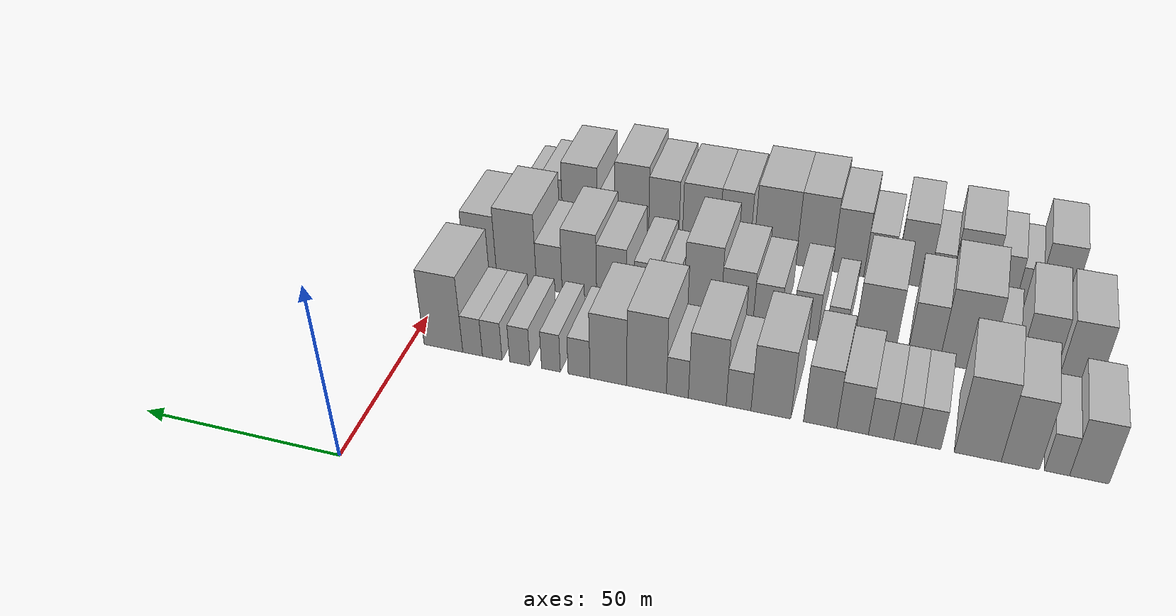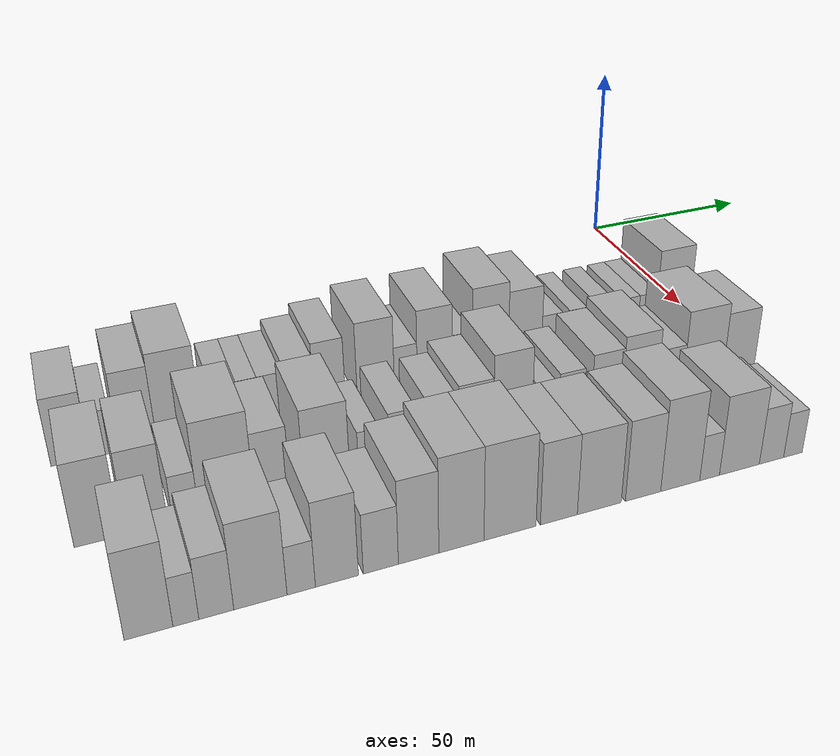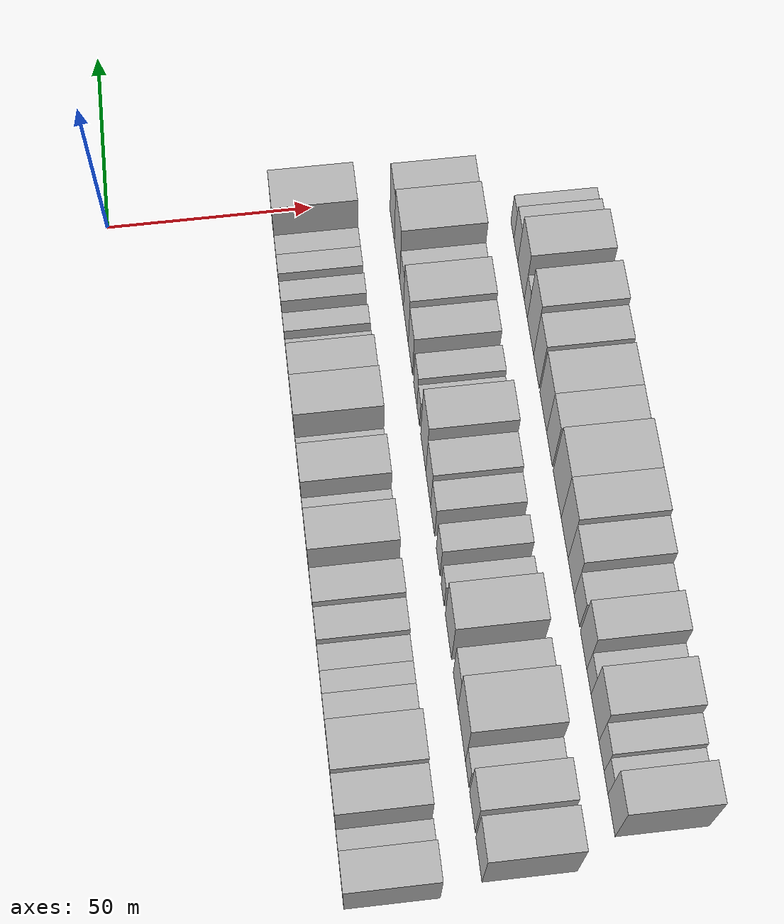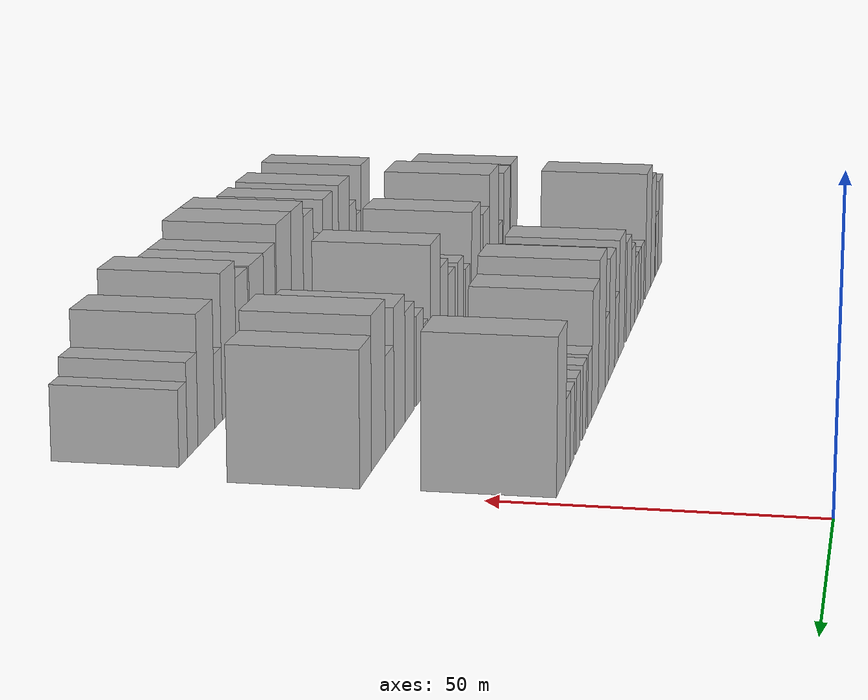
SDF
<sdf version="1.6">
 <world name="default">
  <model name="building_19">
   <static>1</static>
   <pose>50.0000 -163.7969 0 0.000000 0.000000 0.000000</pose>
   <link name="link">
    <pose>0 0 9.00 0 0 0</pose>
    <collision name="collision"><geometry><box><size>20.0000 8.4260 18.0000</size></box></geometry></collision>
    <visual name="visual">
     <cast_shadows>0</cast_shadows>
     <geometry><box><size>20.0000 8.4260 18.0000</size></box></geometry>
     <material>
      <script>
       <uri>model://HANNAS_wall/materials/scripts</uri>
       <uri>model://HANNAS_wall/materials/textures</uri>
       <name>vrc/HANNAS_wall</name>
      </script>
     </material>
    </visual>
   </link>
  </model>
  <model name="building_20">
   <static>1</static>
   <pose>50.0000 -156.8448 0 0.000000 0.000000 0.000000</pose>
   <link name="link">
    <pose>0 0 6.00 0 0 0</pose>
    <collision name="collision"><geometry><box><size>20.0000 5.4781 12.0000</size></box></geometry></collision>
    <visual name="visual">
     <cast_shadows>0</cast_shadows>
     <geometry><box><size>20.0000 5.4781 12.0000</size></box></geometry>
     <material>
      <script>
       <uri>model://HANNAS_wall/materials/scripts</uri>
       <uri>model://HANNAS_wall/materials/textures</uri>
       <name>vrc/HANNAS_wall</name>
      </script>
     </material>
    </visual>
   </link>
  </model>
  <model name="building_21">
   <static>1</static>
   <pose>50.0000 -148.9028 0 0.000000 0.000000 0.000000</pose>
   <link name="link">
    <pose>0 0 10.50 0 0 0</pose>
    <collision name="collision"><geometry><box><size>20.0000 8.4060 21.0000</size></box></geometry></collision>
    <visual name="visual">
     <cast_shadows>0</cast_shadows>
     <geometry><box><size>20.0000 8.4060 21.0000</size></box></geometry>
     <material>
      <script>
       <uri>model://HANNAS_wall/materials/scripts</uri>
       <uri>model://HANNAS_wall/materials/textures</uri>
       <name>vrc/HANNAS_wall</name>
      </script>
     </material>
    </visual>
   </link>
  </model>
  <model name="building_22">
   <static>1</static>
   <pose>50.0000 -139.4966 0 0.000000 0.000000 0.000000</pose>
   <link name="link">
    <pose>0 0 12.00 0 0 0</pose>
    <collision name="collision"><geometry><box><size>20.0000 10.4064 24.0000</size></box></geometry></collision>
    <visual name="visual">
     <cast_shadows>0</cast_shadows>
     <geometry><box><size>20.0000 10.4064 24.0000</size></box></geometry>
     <material>
      <script>
       <uri>model://HANNAS_wall/materials/scripts</uri>
       <uri>model://HANNAS_wall/materials/textures</uri>
       <name>vrc/HANNAS_wall</name>
      </script>
     </material>
    </visual>
   </link>
  </model>
  <model name="building_23">
   <static>1</static>
   <pose>50.0000 -128.4307 0 0.000000 0.000000 0.000000</pose>
   <link name="link">
    <pose>0 0 6.00 0 0 0</pose>
    <collision name="collision"><geometry><box><size>20.0000 5.7254 12.0000</size></box></geometry></collision>
    <visual name="visual">
     <cast_shadows>0</cast_shadows>
     <geometry><box><size>20.0000 5.7254 12.0000</size></box></geometry>
     <material>
      <script>
       <uri>model://HANNAS_wall/materials/scripts</uri>
       <uri>model://HANNAS_wall/materials/textures</uri>
       <name>vrc/HANNAS_wall</name>
      </script>
     </material>
    </visual>
   </link>
  </model>
  <model name="building_24">
   <static>1</static>
   <pose>50.0000 -123.0861 0 0.000000 0.000000 0.000000</pose>
   <link name="link">
    <pose>0 0 6.00 0 0 0</pose>
    <collision name="collision"><geometry><box><size>20.0000 4.9639 12.0000</size></box></geometry></collision>
    <visual name="visual">
     <cast_shadows>0</cast_shadows>
     <geometry><box><size>20.0000 4.9639 12.0000</size></box></geometry>
     <material>
      <script>
       <uri>model://HANNAS_wall/materials/scripts</uri>
       <uri>model://HANNAS_wall/materials/textures</uri>
       <name>vrc/HANNAS_wall</name>
      </script>
     </material>
    </visual>
   </link>
  </model>
  <model name="building_25">
   <static>1</static>
   <pose>50.0000 -117.6869 0 0.000000 0.000000 0.000000</pose>
   <link name="link">
    <pose>0 0 6.00 0 0 0</pose>
    <collision name="collision"><geometry><box><size>20.0000 5.8345 12.0000</size></box></geometry></collision>
    <visual name="visual">
     <cast_shadows>0</cast_shadows>
     <geometry><box><size>20.0000 5.8345 12.0000</size></box></geometry>
     <material>
      <script>
       <uri>model://HANNAS_wall/materials/scripts</uri>
       <uri>model://HANNAS_wall/materials/textures</uri>
       <name>vrc/HANNAS_wall</name>
      </script>
     </material>
    </visual>
   </link>
  </model>
  <model name="building_26">
   <static>1</static>
   <pose>50.0000 -111.0916 0 0.000000 0.000000 0.000000</pose>
   <link name="link">
    <pose>0 0 7.50 0 0 0</pose>
    <collision name="collision"><geometry><box><size>20.0000 7.3561 15.0000</size></box></geometry></collision>
    <visual name="visual">
     <cast_shadows>0</cast_shadows>
     <geometry><box><size>20.0000 7.3561 15.0000</size></box></geometry>
     <material>
      <script>
       <uri>model://HANNAS_wall/materials/scripts</uri>
       <uri>model://HANNAS_wall/materials/textures</uri>
       <name>vrc/HANNAS_wall</name>
      </script>
     </material>
    </visual>
   </link>
  </model>
  <model name="building_27">
   <static>1</static>
   <pose>50.0000 -103.5186 0 0.000000 0.000000 0.000000</pose>
   <link name="link">
    <pose>0 0 9.00 0 0 0</pose>
    <collision name="collision"><geometry><box><size>20.0000 7.7900 18.0000</size></box></geometry></collision>
    <visual name="visual">
     <cast_shadows>0</cast_shadows>
     <geometry><box><size>20.0000 7.7900 18.0000</size></box></geometry>
     <material>
      <script>
       <uri>model://HANNAS_wall/materials/scripts</uri>
       <uri>model://HANNAS_wall/materials/textures</uri>
       <name>vrc/HANNAS_wall</name>
      </script>
     </material>
    </visual>
   </link>
  </model>
  <model name="building_28">
   <static>1</static>
   <pose>50.0000 -91.8596 0 0.000000 0.000000 0.000000</pose>
   <link name="link">
    <pose>0 0 10.50 0 0 0</pose>
    <collision name="collision"><geometry><box><size>20.0000 9.5280 21.0000</size></box></geometry></collision>
    <visual name="visual">
     <cast_shadows>0</cast_shadows>
     <geometry><box><size>20.0000 9.5280 21.0000</size></box></geometry>
     <material>
      <script>
       <uri>model://HANNAS_wall/materials/scripts</uri>
       <uri>model://HANNAS_wall/materials/textures</uri>
       <name>vrc/HANNAS_wall</name>
      </script>
     </material>
    </visual>
   </link>
  </model>
  <model name="building_29">
   <static>1</static>
   <pose>50.0000 -84.0969 0 0.000000 0.000000 0.000000</pose>
   <link name="link">
    <pose>0 0 6.00 0 0 0</pose>
    <collision name="collision"><geometry><box><size>20.0000 5.9974 12.0000</size></box></geometry></collision>
    <visual name="visual">
     <cast_shadows>0</cast_shadows>
     <geometry><box><size>20.0000 5.9974 12.0000</size></box></geometry>
     <material>
      <script>
       <uri>model://HANNAS_wall/materials/scripts</uri>
       <uri>model://HANNAS_wall/materials/textures</uri>
       <name>vrc/HANNAS_wall</name>
      </script>
     </material>
    </visual>
   </link>
  </model>
  <model name="building_30">
   <static>1</static>
   <pose>50.0000 -76.4811 0 0.000000 0.000000 0.000000</pose>
   <link name="link">
    <pose>0 0 10.50 0 0 0</pose>
    <collision name="collision"><geometry><box><size>20.0000 9.2342 21.0000</size></box></geometry></collision>
    <visual name="visual">
     <cast_shadows>0</cast_shadows>
     <geometry><box><size>20.0000 9.2342 21.0000</size></box></geometry>
     <material>
      <script>
       <uri>model://HANNAS_wall/materials/scripts</uri>
       <uri>model://HANNAS_wall/materials/textures</uri>
       <name>vrc/HANNAS_wall</name>
      </script>
     </material>
    </visual>
   </link>
  </model>
  <model name="building_31">
   <static>1</static>
   <pose>50.0000 -69.1542 0 0.000000 0.000000 0.000000</pose>
   <link name="link">
    <pose>0 0 6.00 0 0 0</pose>
    <collision name="collision"><geometry><box><size>20.0000 5.4197 12.0000</size></box></geometry></collision>
    <visual name="visual">
     <cast_shadows>0</cast_shadows>
     <geometry><box><size>20.0000 5.4197 12.0000</size></box></geometry>
     <material>
      <script>
       <uri>model://HANNAS_wall/materials/scripts</uri>
       <uri>model://HANNAS_wall/materials/textures</uri>
       <name>vrc/HANNAS_wall</name>
      </script>
     </material>
    </visual>
   </link>
  </model>
  <model name="building_32">
   <static>1</static>
   <pose>50.0000 -61.4947 0 0.000000 0.000000 0.000000</pose>
   <link name="link">
    <pose>0 0 12.00 0 0 0</pose>
    <collision name="collision"><geometry><box><size>20.0000 9.8994 24.0000</size></box></geometry></collision>
    <visual name="visual">
     <cast_shadows>0</cast_shadows>
     <geometry><box><size>20.0000 9.8994 24.0000</size></box></geometry>
     <material>
      <script>
       <uri>model://HANNAS_wall/materials/scripts</uri>
       <uri>model://HANNAS_wall/materials/textures</uri>
       <name>vrc/HANNAS_wall</name>
      </script>
     </material>
    </visual>
   </link>
  </model>
  <model name="building_33">
   <static>1</static>
   <pose>50.0000 -51.8839 0 0.000000 0.000000 0.000000</pose>
   <link name="link">
    <pose>0 0 10.50 0 0 0</pose>
    <collision name="collision"><geometry><box><size>20.0000 9.3221 21.0000</size></box></geometry></collision>
    <visual name="visual">
     <cast_shadows>0</cast_shadows>
     <geometry><box><size>20.0000 9.3221 21.0000</size></box></geometry>
     <material>
      <script>
       <uri>model://HANNAS_wall/materials/scripts</uri>
       <uri>model://HANNAS_wall/materials/textures</uri>
       <name>vrc/HANNAS_wall</name>
      </script>
     </material>
    </visual>
   </link>
  </model>
  <model name="building_34">
   <static>1</static>
   <pose>50.0000 -44.4102 0 0.000000 0.000000 0.000000</pose>
   <link name="link">
    <pose>0 0 6.00 0 0 0</pose>
    <collision name="collision"><geometry><box><size>20.0000 5.6254 12.0000</size></box></geometry></collision>
    <visual name="visual">
     <cast_shadows>0</cast_shadows>
     <geometry><box><size>20.0000 5.6254 12.0000</size></box></geometry>
     <material>
      <script>
       <uri>model://HANNAS_wall/materials/scripts</uri>
       <uri>model://HANNAS_wall/materials/textures</uri>
       <name>vrc/HANNAS_wall</name>
      </script>
     </material>
    </visual>
   </link>
  </model>
  <model name="building_35">
   <static>1</static>
   <pose>50.0000 -37.1512 0 0.000000 0.000000 0.000000</pose>
   <link name="link">
    <pose>0 0 6.00 0 0 0</pose>
    <collision name="collision"><geometry><box><size>20.0000 4.8925 12.0000</size></box></geometry></collision>
    <visual name="visual">
     <cast_shadows>0</cast_shadows>
     <geometry><box><size>20.0000 4.8925 12.0000</size></box></geometry>
     <material>
      <script>
       <uri>model://HANNAS_wall/materials/scripts</uri>
       <uri>model://HANNAS_wall/materials/textures</uri>
       <name>vrc/HANNAS_wall</name>
      </script>
     </material>
    </visual>
   </link>
  </model>
  <model name="building_36">
   <static>1</static>
   <pose>50.0000 -29.0344 0 0.000000 0.000000 0.000000</pose>
   <link name="link">
    <pose>0 0 6.00 0 0 0</pose>
    <collision name="collision"><geometry><box><size>20.0000 5.3409 12.0000</size></box></geometry></collision>
    <visual name="visual">
     <cast_shadows>0</cast_shadows>
     <geometry><box><size>20.0000 5.3409 12.0000</size></box></geometry>
     <material>
      <script>
       <uri>model://HANNAS_wall/materials/scripts</uri>
       <uri>model://HANNAS_wall/materials/textures</uri>
       <name>vrc/HANNAS_wall</name>
      </script>
     </material>
    </visual>
   </link>
  </model>
  <model name="building_37">
   <static>1</static>
   <pose>50.0000 -21.7599 0 0.000000 0.000000 0.000000</pose>
   <link name="link">
    <pose>0 0 6.00 0 0 0</pose>
    <collision name="collision"><geometry><box><size>20.0000 5.2081 12.0000</size></box></geometry></collision>
    <visual name="visual">
     <cast_shadows>0</cast_shadows>
     <geometry><box><size>20.0000 5.2081 12.0000</size></box></geometry>
     <material>
      <script>
       <uri>model://HANNAS_wall/materials/scripts</uri>
       <uri>model://HANNAS_wall/materials/textures</uri>
       <name>vrc/HANNAS_wall</name>
      </script>
     </material>
    </visual>
   </link>
  </model>
  <model name="building_38">
   <static>1</static>
   <pose>50.0000 -16.5319 0 0.000000 0.000000 0.000000</pose>
   <link name="link">
    <pose>0 0 6.00 0 0 0</pose>
    <collision name="collision"><geometry><box><size>20.0000 5.2479 12.0000</size></box></geometry></collision>
    <visual name="visual">
     <cast_shadows>0</cast_shadows>
     <geometry><box><size>20.0000 5.2479 12.0000</size></box></geometry>
     <material>
      <script>
       <uri>model://HANNAS_wall/materials/scripts</uri>
       <uri>model://HANNAS_wall/materials/textures</uri>
       <name>vrc/HANNAS_wall</name>
      </script>
     </material>
    </visual>
   </link>
  </model>
  <model name="building_39">
   <static>1</static>
   <pose>50.0000 -8.6887 0 0.000000 0.000000 0.000000</pose>
   <link name="link">
    <pose>0 0 12.00 0 0 0</pose>
    <collision name="collision"><geometry><box><size>20.0000 10.4386 24.0000</size></box></geometry></collision>
    <visual name="visual">
     <cast_shadows>0</cast_shadows>
     <geometry><box><size>20.0000 10.4386 24.0000</size></box></geometry>
     <material>
      <script>
       <uri>model://HANNAS_wall/materials/scripts</uri>
       <uri>model://HANNAS_wall/materials/textures</uri>
       <name>vrc/HANNAS_wall</name>
      </script>
     </material>
    </visual>
   </link>
  </model>
  <model name="building_96">
   <static>1</static>
   <pose>79.0000 -161.1524 0 0.000000 0.000000 0.000000</pose>
   <link name="link">
    <pose>0 0 10.50 0 0 0</pose>
    <collision name="collision"><geometry><box><size>20.0000 9.2816 21.0000</size></box></geometry></collision>
    <visual name="visual">
     <cast_shadows>0</cast_shadows>
     <geometry><box><size>20.0000 9.2816 21.0000</size></box></geometry>
     <material>
      <script>
       <uri>model://HANNAS_wall/materials/scripts</uri>
       <uri>model://HANNAS_wall/materials/textures</uri>
       <name>vrc/HANNAS_wall</name>
      </script>
     </material>
    </visual>
   </link>
  </model>
  <model name="building_97">
   <static>1</static>
   <pose>79.0000 -151.2131 0 0.000000 0.000000 0.000000</pose>
   <link name="link">
    <pose>0 0 10.50 0 0 0</pose>
    <collision name="collision"><geometry><box><size>20.0000 8.5970 21.0000</size></box></geometry></collision>
    <visual name="visual">
     <cast_shadows>0</cast_shadows>
     <geometry><box><size>20.0000 8.5970 21.0000</size></box></geometry>
     <material>
      <script>
       <uri>model://HANNAS_wall/materials/scripts</uri>
       <uri>model://HANNAS_wall/materials/textures</uri>
       <name>vrc/HANNAS_wall</name>
      </script>
     </material>
    </visual>
   </link>
  </model>
  <model name="building_98">
   <static>1</static>
   <pose>79.0000 -143.1586 0 0.000000 0.000000 0.000000</pose>
   <link name="link">
    <pose>0 0 6.00 0 0 0</pose>
    <collision name="collision"><geometry><box><size>20.0000 5.5120 12.0000</size></box></geometry></collision>
    <visual name="visual">
     <cast_shadows>0</cast_shadows>
     <geometry><box><size>20.0000 5.5120 12.0000</size></box></geometry>
     <material>
      <script>
       <uri>model://HANNAS_wall/materials/scripts</uri>
       <uri>model://HANNAS_wall/materials/textures</uri>
       <name>vrc/HANNAS_wall</name>
      </script>
     </material>
    </visual>
   </link>
  </model>
  <model name="building_99">
   <static>1</static>
   <pose>79.0000 -134.4645 0 0.000000 0.000000 0.000000</pose>
   <link name="link">
    <pose>0 0 12.00 0 0 0</pose>
    <collision name="collision"><geometry><box><size>20.0000 11.8762 24.0000</size></box></geometry></collision>
    <visual name="visual">
     <cast_shadows>0</cast_shadows>
     <geometry><box><size>20.0000 11.8762 24.0000</size></box></geometry>
     <material>
      <script>
       <uri>model://HANNAS_wall/materials/scripts</uri>
       <uri>model://HANNAS_wall/materials/textures</uri>
       <name>vrc/HANNAS_wall</name>
      </script>
     </material>
    </visual>
   </link>
  </model>
  <model name="building_100">
   <static>1</static>
   <pose>79.0000 -124.6125 0 0.000000 0.000000 0.000000</pose>
   <link name="link">
    <pose>0 0 9.00 0 0 0</pose>
    <collision name="collision"><geometry><box><size>20.0000 7.8279 18.0000</size></box></geometry></collision>
    <visual name="visual">
     <cast_shadows>0</cast_shadows>
     <geometry><box><size>20.0000 7.8279 18.0000</size></box></geometry>
     <material>
      <script>
       <uri>model://HANNAS_wall/materials/scripts</uri>
       <uri>model://HANNAS_wall/materials/textures</uri>
       <name>vrc/HANNAS_wall</name>
      </script>
     </material>
    </visual>
   </link>
  </model>
  <model name="building_101">
   <static>1</static>
   <pose>79.0000 -112.5172 0 0.000000 0.000000 0.000000</pose>
   <link name="link">
    <pose>0 0 10.50 0 0 0</pose>
    <collision name="collision"><geometry><box><size>20.0000 10.3627 21.0000</size></box></geometry></collision>
    <visual name="visual">
     <cast_shadows>0</cast_shadows>
     <geometry><box><size>20.0000 10.3627 21.0000</size></box></geometry>
     <material>
      <script>
       <uri>model://HANNAS_wall/materials/scripts</uri>
       <uri>model://HANNAS_wall/materials/textures</uri>
       <name>vrc/HANNAS_wall</name>
      </script>
     </material>
    </visual>
   </link>
  </model>
  <model name="building_102">
   <static>1</static>
   <pose>79.0000 -102.7918 0 0.000000 0.000000 0.000000</pose>
   <link name="link">
    <pose>0 0 6.00 0 0 0</pose>
    <collision name="collision"><geometry><box><size>20.0000 5.0881 12.0000</size></box></geometry></collision>
    <visual name="visual">
     <cast_shadows>0</cast_shadows>
     <geometry><box><size>20.0000 5.0881 12.0000</size></box></geometry>
     <material>
      <script>
       <uri>model://HANNAS_wall/materials/scripts</uri>
       <uri>model://HANNAS_wall/materials/textures</uri>
       <name>vrc/HANNAS_wall</name>
      </script>
     </material>
    </visual>
   </link>
  </model>
  <model name="building_103">
   <static>1</static>
   <pose>79.0000 -94.9808 0 0.000000 0.000000 0.000000</pose>
   <link name="link">
    <pose>0 0 7.50 0 0 0</pose>
    <collision name="collision"><geometry><box><size>20.0000 6.5339 15.0000</size></box></geometry></collision>
    <visual name="visual">
     <cast_shadows>0</cast_shadows>
     <geometry><box><size>20.0000 6.5339 15.0000</size></box></geometry>
     <material>
      <script>
       <uri>model://HANNAS_wall/materials/scripts</uri>
       <uri>model://HANNAS_wall/materials/textures</uri>
       <name>vrc/HANNAS_wall</name>
      </script>
     </material>
    </visual>
   </link>
  </model>
  <model name="building_104">
   <static>1</static>
   <pose>79.0000 -85.1651 0 0.000000 0.000000 0.000000</pose>
   <link name="link">
    <pose>0 0 7.50 0 0 0</pose>
    <collision name="collision"><geometry><box><size>20.0000 7.0974 15.0000</size></box></geometry></collision>
    <visual name="visual">
     <cast_shadows>0</cast_shadows>
     <geometry><box><size>20.0000 7.0974 15.0000</size></box></geometry>
     <material>
      <script>
       <uri>model://HANNAS_wall/materials/scripts</uri>
       <uri>model://HANNAS_wall/materials/textures</uri>
       <name>vrc/HANNAS_wall</name>
      </script>
     </material>
    </visual>
   </link>
  </model>
  <model name="building_105">
   <static>1</static>
   <pose>79.0000 -77.3808 0 0.000000 0.000000 0.000000</pose>
   <link name="link">
    <pose>0 0 9.00 0 0 0</pose>
    <collision name="collision"><geometry><box><size>20.0000 8.4713 18.0000</size></box></geometry></collision>
    <visual name="visual">
     <cast_shadows>0</cast_shadows>
     <geometry><box><size>20.0000 8.4713 18.0000</size></box></geometry>
     <material>
      <script>
       <uri>model://HANNAS_wall/materials/scripts</uri>
       <uri>model://HANNAS_wall/materials/textures</uri>
       <name>vrc/HANNAS_wall</name>
      </script>
     </material>
    </visual>
   </link>
  </model>
  <model name="building_106">
   <static>1</static>
   <pose>79.0000 -68.3052 0 0.000000 0.000000 0.000000</pose>
   <link name="link">
    <pose>0 0 12.00 0 0 0</pose>
    <collision name="collision"><geometry><box><size>20.0000 9.6799 24.0000</size></box></geometry></collision>
    <visual name="visual">
     <cast_shadows>0</cast_shadows>
     <geometry><box><size>20.0000 9.6799 24.0000</size></box></geometry>
     <material>
      <script>
       <uri>model://HANNAS_wall/materials/scripts</uri>
       <uri>model://HANNAS_wall/materials/textures</uri>
       <name>vrc/HANNAS_wall</name>
      </script>
     </material>
    </visual>
   </link>
  </model>
  <model name="building_107">
   <static>1</static>
   <pose>79.0000 -59.0352 0 0.000000 0.000000 0.000000</pose>
   <link name="link">
    <pose>0 0 6.00 0 0 0</pose>
    <collision name="collision"><geometry><box><size>20.0000 4.8601 12.0000</size></box></geometry></collision>
    <visual name="visual">
     <cast_shadows>0</cast_shadows>
     <geometry><box><size>20.0000 4.8601 12.0000</size></box></geometry>
     <material>
      <script>
       <uri>model://HANNAS_wall/materials/scripts</uri>
       <uri>model://HANNAS_wall/materials/textures</uri>
       <name>vrc/HANNAS_wall</name>
      </script>
     </material>
    </visual>
   </link>
  </model>
  <model name="building_108">
   <static>1</static>
   <pose>79.0000 -53.3615 0 0.000000 0.000000 0.000000</pose>
   <link name="link">
    <pose>0 0 7.50 0 0 0</pose>
    <collision name="collision"><geometry><box><size>20.0000 6.4872 15.0000</size></box></geometry></collision>
    <visual name="visual">
     <cast_shadows>0</cast_shadows>
     <geometry><box><size>20.0000 6.4872 15.0000</size></box></geometry>
     <material>
      <script>
       <uri>model://HANNAS_wall/materials/scripts</uri>
       <uri>model://HANNAS_wall/materials/textures</uri>
       <name>vrc/HANNAS_wall</name>
      </script>
     </material>
    </visual>
   </link>
  </model>
  <model name="building_109">
   <static>1</static>
   <pose>79.0000 -44.0421 0 0.000000 0.000000 0.000000</pose>
   <link name="link">
    <pose>0 0 9.00 0 0 0</pose>
    <collision name="collision"><geometry><box><size>20.0000 8.1518 18.0000</size></box></geometry></collision>
    <visual name="visual">
     <cast_shadows>0</cast_shadows>
     <geometry><box><size>20.0000 8.1518 18.0000</size></box></geometry>
     <material>
      <script>
       <uri>model://HANNAS_wall/materials/scripts</uri>
       <uri>model://HANNAS_wall/materials/textures</uri>
       <name>vrc/HANNAS_wall</name>
      </script>
     </material>
    </visual>
   </link>
  </model>
  <model name="building_110">
   <static>1</static>
   <pose>79.0000 -35.1795 0 0.000000 0.000000 0.000000</pose>
   <link name="link">
    <pose>0 0 10.50 0 0 0</pose>
    <collision name="collision"><geometry><box><size>20.0000 9.5734 21.0000</size></box></geometry></collision>
    <visual name="visual">
     <cast_shadows>0</cast_shadows>
     <geometry><box><size>20.0000 9.5734 21.0000</size></box></geometry>
     <material>
      <script>
       <uri>model://HANNAS_wall/materials/scripts</uri>
       <uri>model://HANNAS_wall/materials/textures</uri>
       <name>vrc/HANNAS_wall</name>
      </script>
     </material>
    </visual>
   </link>
  </model>
  <model name="building_111">
   <static>1</static>
   <pose>79.0000 -26.8011 0 0.000000 0.000000 0.000000</pose>
   <link name="link">
    <pose>0 0 7.50 0 0 0</pose>
    <collision name="collision"><geometry><box><size>20.0000 7.1832 15.0000</size></box></geometry></collision>
    <visual name="visual">
     <cast_shadows>0</cast_shadows>
     <geometry><box><size>20.0000 7.1832 15.0000</size></box></geometry>
     <material>
      <script>
       <uri>model://HANNAS_wall/materials/scripts</uri>
       <uri>model://HANNAS_wall/materials/textures</uri>
       <name>vrc/HANNAS_wall</name>
      </script>
     </material>
    </visual>
   </link>
  </model>
  <model name="building_112">
   <static>1</static>
   <pose>79.0000 -17.6058 0 0.000000 0.000000 0.000000</pose>
   <link name="link">
    <pose>0 0 12.00 0 0 0</pose>
    <collision name="collision"><geometry><box><size>20.0000 11.2074 24.0000</size></box></geometry></collision>
    <visual name="visual">
     <cast_shadows>0</cast_shadows>
     <geometry><box><size>20.0000 11.2074 24.0000</size></box></geometry>
     <material>
      <script>
       <uri>model://HANNAS_wall/materials/scripts</uri>
       <uri>model://HANNAS_wall/materials/textures</uri>
       <name>vrc/HANNAS_wall</name>
      </script>
     </material>
    </visual>
   </link>
  </model>
  <model name="building_113">
   <static>1</static>
   <pose>79.0000 -7.4538 0 0.000000 0.000000 0.000000</pose>
   <link name="link">
    <pose>0 0 10.50 0 0 0</pose>
    <collision name="collision"><geometry><box><size>20.0000 9.0966 21.0000</size></box></geometry></collision>
    <visual name="visual">
     <cast_shadows>0</cast_shadows>
     <geometry><box><size>20.0000 9.0966 21.0000</size></box></geometry>
     <material>
      <script>
       <uri>model://HANNAS_wall/materials/scripts</uri>
       <uri>model://HANNAS_wall/materials/textures</uri>
       <name>vrc/HANNAS_wall</name>
      </script>
     </material>
    </visual>
   </link>
  </model>
  <model name="building_165">
   <static>1</static>
   <pose>108.0000 -155.1943 0 0.000000 0.000000 0.000000</pose>
   <link name="link">
    <pose>0 0 10.50 0 0 0</pose>
    <collision name="collision"><geometry><box><size>20.0000 8.9325 21.0000</size></box></geometry></collision>
    <visual name="visual">
     <cast_shadows>0</cast_shadows>
     <geometry><box><size>20.0000 8.9325 21.0000</size></box></geometry>
     <material>
      <script>
       <uri>model://HANNAS_wall/materials/scripts</uri>
       <uri>model://HANNAS_wall/materials/textures</uri>
       <name>vrc/HANNAS_wall</name>
      </script>
     </material>
    </visual>
   </link>
  </model>
  <model name="building_166">
   <static>1</static>
   <pose>108.0000 -148.3121 0 0.000000 0.000000 0.000000</pose>
   <link name="link">
    <pose>0 0 6.00 0 0 0</pose>
    <collision name="collision"><geometry><box><size>20.0000 4.8319 12.0000</size></box></geometry></collision>
    <visual name="visual">
     <cast_shadows>0</cast_shadows>
     <geometry><box><size>20.0000 4.8319 12.0000</size></box></geometry>
     <material>
      <script>
       <uri>model://HANNAS_wall/materials/scripts</uri>
       <uri>model://HANNAS_wall/materials/textures</uri>
       <name>vrc/HANNAS_wall</name>
      </script>
     </material>
    </visual>
   </link>
  </model>
  <model name="building_167">
   <static>1</static>
   <pose>108.0000 -142.5881 0 0.000000 0.000000 0.000000</pose>
   <link name="link">
    <pose>0 0 7.50 0 0 0</pose>
    <collision name="collision"><geometry><box><size>20.0000 6.6160 15.0000</size></box></geometry></collision>
    <visual name="visual">
     <cast_shadows>0</cast_shadows>
     <geometry><box><size>20.0000 6.6160 15.0000</size></box></geometry>
     <material>
      <script>
       <uri>model://HANNAS_wall/materials/scripts</uri>
       <uri>model://HANNAS_wall/materials/textures</uri>
       <name>vrc/HANNAS_wall</name>
      </script>
     </material>
    </visual>
   </link>
  </model>
  <model name="building_168">
   <static>1</static>
   <pose>108.0000 -134.0990 0 0.000000 0.000000 0.000000</pose>
   <link name="link">
    <pose>0 0 10.50 0 0 0</pose>
    <collision name="collision"><geometry><box><size>20.0000 10.3623 21.0000</size></box></geometry></collision>
    <visual name="visual">
     <cast_shadows>0</cast_shadows>
     <geometry><box><size>20.0000 10.3623 21.0000</size></box></geometry>
     <material>
      <script>
       <uri>model://HANNAS_wall/materials/scripts</uri>
       <uri>model://HANNAS_wall/materials/textures</uri>
       <name>vrc/HANNAS_wall</name>
      </script>
     </material>
    </visual>
   </link>
  </model>
  <model name="building_169">
   <static>1</static>
   <pose>108.0000 -126.0930 0 0.000000 0.000000 0.000000</pose>
   <link name="link">
    <pose>0 0 6.00 0 0 0</pose>
    <collision name="collision"><geometry><box><size>20.0000 5.6498 12.0000</size></box></geometry></collision>
    <visual name="visual">
     <cast_shadows>0</cast_shadows>
     <geometry><box><size>20.0000 5.6498 12.0000</size></box></geometry>
     <material>
      <script>
       <uri>model://HANNAS_wall/materials/scripts</uri>
       <uri>model://HANNAS_wall/materials/textures</uri>
       <name>vrc/HANNAS_wall</name>
      </script>
     </material>
    </visual>
   </link>
  </model>
  <model name="building_170">
   <static>1</static>
   <pose>108.0000 -118.9032 0 0.000000 0.000000 0.000000</pose>
   <link name="link">
    <pose>0 0 10.50 0 0 0</pose>
    <collision name="collision"><geometry><box><size>20.0000 8.7298 21.0000</size></box></geometry></collision>
    <visual name="visual">
     <cast_shadows>0</cast_shadows>
     <geometry><box><size>20.0000 8.7298 21.0000</size></box></geometry>
     <material>
      <script>
       <uri>model://HANNAS_wall/materials/scripts</uri>
       <uri>model://HANNAS_wall/materials/textures</uri>
       <name>vrc/HANNAS_wall</name>
      </script>
     </material>
    </visual>
   </link>
  </model>
  <model name="building_171">
   <static>1</static>
   <pose>108.0000 -109.8707 0 0.000000 0.000000 0.000000</pose>
   <link name="link">
    <pose>0 0 7.50 0 0 0</pose>
    <collision name="collision"><geometry><box><size>20.0000 7.3352 15.0000</size></box></geometry></collision>
    <visual name="visual">
     <cast_shadows>0</cast_shadows>
     <geometry><box><size>20.0000 7.3352 15.0000</size></box></geometry>
     <material>
      <script>
       <uri>model://HANNAS_wall/materials/scripts</uri>
       <uri>model://HANNAS_wall/materials/textures</uri>
       <name>vrc/HANNAS_wall</name>
      </script>
     </material>
    </visual>
   </link>
  </model>
  <model name="building_172">
   <static>1</static>
   <pose>108.0000 -101.8920 0 0.000000 0.000000 0.000000</pose>
   <link name="link">
    <pose>0 0 10.50 0 0 0</pose>
    <collision name="collision"><geometry><box><size>20.0000 8.6221 21.0000</size></box></geometry></collision>
    <visual name="visual">
     <cast_shadows>0</cast_shadows>
     <geometry><box><size>20.0000 8.6221 21.0000</size></box></geometry>
     <material>
      <script>
       <uri>model://HANNAS_wall/materials/scripts</uri>
       <uri>model://HANNAS_wall/materials/textures</uri>
       <name>vrc/HANNAS_wall</name>
      </script>
     </material>
    </visual>
   </link>
  </model>
  <model name="building_173">
   <static>1</static>
   <pose>108.0000 -92.6342 0 0.000000 0.000000 0.000000</pose>
   <link name="link">
    <pose>0 0 12.00 0 0 0</pose>
    <collision name="collision"><geometry><box><size>20.0000 9.8935 24.0000</size></box></geometry></collision>
    <visual name="visual">
     <cast_shadows>0</cast_shadows>
     <geometry><box><size>20.0000 9.8935 24.0000</size></box></geometry>
     <material>
      <script>
       <uri>model://HANNAS_wall/materials/scripts</uri>
       <uri>model://HANNAS_wall/materials/textures</uri>
       <name>vrc/HANNAS_wall</name>
      </script>
     </material>
    </visual>
   </link>
  </model>
  <model name="building_174">
   <static>1</static>
   <pose>108.0000 -81.8179 0 0.000000 0.000000 0.000000</pose>
   <link name="link">
    <pose>0 0 12.00 0 0 0</pose>
    <collision name="collision"><geometry><box><size>20.0000 11.7392 24.0000</size></box></geometry></collision>
    <visual name="visual">
     <cast_shadows>0</cast_shadows>
     <geometry><box><size>20.0000 11.7392 24.0000</size></box></geometry>
     <material>
      <script>
       <uri>model://HANNAS_wall/materials/scripts</uri>
       <uri>model://HANNAS_wall/materials/textures</uri>
       <name>vrc/HANNAS_wall</name>
      </script>
     </material>
    </visual>
   </link>
  </model>
  <model name="building_175">
   <static>1</static>
   <pose>108.0000 -70.6489 0 0.000000 0.000000 0.000000</pose>
   <link name="link">
    <pose>0 0 10.50 0 0 0</pose>
    <collision name="collision"><geometry><box><size>20.0000 8.5988 21.0000</size></box></geometry></collision>
    <visual name="visual">
     <cast_shadows>0</cast_shadows>
     <geometry><box><size>20.0000 8.5988 21.0000</size></box></geometry>
     <material>
      <script>
       <uri>model://HANNAS_wall/materials/scripts</uri>
       <uri>model://HANNAS_wall/materials/textures</uri>
       <name>vrc/HANNAS_wall</name>
      </script>
     </material>
    </visual>
   </link>
  </model>
  <model name="building_176">
   <static>1</static>
   <pose>108.0000 -61.1020 0 0.000000 0.000000 0.000000</pose>
   <link name="link">
    <pose>0 0 10.50 0 0 0</pose>
    <collision name="collision"><geometry><box><size>20.0000 10.4948 21.0000</size></box></geometry></collision>
    <visual name="visual">
     <cast_shadows>0</cast_shadows>
     <geometry><box><size>20.0000 10.4948 21.0000</size></box></geometry>
     <material>
      <script>
       <uri>model://HANNAS_wall/materials/scripts</uri>
       <uri>model://HANNAS_wall/materials/textures</uri>
       <name>vrc/HANNAS_wall</name>
      </script>
     </material>
    </visual>
   </link>
  </model>
  <model name="building_177">
   <static>1</static>
   <pose>108.0000 -50.5281 0 0.000000 0.000000 0.000000</pose>
   <link name="link">
    <pose>0 0 10.50 0 0 0</pose>
    <collision name="collision"><geometry><box><size>20.0000 8.6531 21.0000</size></box></geometry></collision>
    <visual name="visual">
     <cast_shadows>0</cast_shadows>
     <geometry><box><size>20.0000 8.6531 21.0000</size></box></geometry>
     <material>
      <script>
       <uri>model://HANNAS_wall/materials/scripts</uri>
       <uri>model://HANNAS_wall/materials/textures</uri>
       <name>vrc/HANNAS_wall</name>
      </script>
     </material>
    </visual>
   </link>
  </model>
  <model name="building_178">
   <static>1</static>
   <pose>108.0000 -41.2864 0 0.000000 0.000000 0.000000</pose>
   <link name="link">
    <pose>0 0 12.00 0 0 0</pose>
    <collision name="collision"><geometry><box><size>20.0000 9.8302 24.0000</size></box></geometry></collision>
    <visual name="visual">
     <cast_shadows>0</cast_shadows>
     <geometry><box><size>20.0000 9.8302 24.0000</size></box></geometry>
     <material>
      <script>
       <uri>model://HANNAS_wall/materials/scripts</uri>
       <uri>model://HANNAS_wall/materials/textures</uri>
       <name>vrc/HANNAS_wall</name>
      </script>
     </material>
    </visual>
   </link>
  </model>
  <model name="building_179">
   <static>1</static>
   <pose>108.0000 -33.8407 0 0.000000 0.000000 0.000000</pose>
   <link name="link">
    <pose>0 0 6.00 0 0 0</pose>
    <collision name="collision"><geometry><box><size>20.0000 5.0613 12.0000</size></box></geometry></collision>
    <visual name="visual">
     <cast_shadows>0</cast_shadows>
     <geometry><box><size>20.0000 5.0613 12.0000</size></box></geometry>
     <material>
      <script>
       <uri>model://HANNAS_wall/materials/scripts</uri>
       <uri>model://HANNAS_wall/materials/textures</uri>
       <name>vrc/HANNAS_wall</name>
      </script>
     </material>
    </visual>
   </link>
  </model>
  <model name="building_180">
   <static>1</static>
   <pose>108.0000 -26.0905 0 0.000000 0.000000 0.000000</pose>
   <link name="link">
    <pose>0 0 10.50 0 0 0</pose>
    <collision name="collision"><geometry><box><size>20.0000 10.4390 21.0000</size></box></geometry></collision>
    <visual name="visual">
     <cast_shadows>0</cast_shadows>
     <geometry><box><size>20.0000 10.4390 21.0000</size></box></geometry>
     <material>
      <script>
       <uri>model://HANNAS_wall/materials/scripts</uri>
       <uri>model://HANNAS_wall/materials/textures</uri>
       <name>vrc/HANNAS_wall</name>
      </script>
     </material>
    </visual>
   </link>
  </model>
  <model name="building_181">
   <static>1</static>
   <pose>108.0000 -17.6293 0 0.000000 0.000000 0.000000</pose>
   <link name="link">
    <pose>0 0 7.50 0 0 0</pose>
    <collision name="collision"><geometry><box><size>20.0000 6.4833 15.0000</size></box></geometry></collision>
    <visual name="visual">
     <cast_shadows>0</cast_shadows>
     <geometry><box><size>20.0000 6.4833 15.0000</size></box></geometry>
     <material>
      <script>
       <uri>model://HANNAS_wall/materials/scripts</uri>
       <uri>model://HANNAS_wall/materials/textures</uri>
       <name>vrc/HANNAS_wall</name>
      </script>
     </material>
    </visual>
   </link>
  </model>
  <model name="building_182">
   <static>1</static>
   <pose>108.0000 -11.8645 0 0.000000 0.000000 0.000000</pose>
   <link name="link">
    <pose>0 0 6.00 0 0 0</pose>
    <collision name="collision"><geometry><box><size>20.0000 5.0463 12.0000</size></box></geometry></collision>
    <visual name="visual">
     <cast_shadows>0</cast_shadows>
     <geometry><box><size>20.0000 5.0463 12.0000</size></box></geometry>
     <material>
      <script>
       <uri>model://HANNAS_wall/materials/scripts</uri>
       <uri>model://HANNAS_wall/materials/textures</uri>
       <name>vrc/HANNAS_wall</name>
      </script>
     </material>
    </visual>
   </link>
  </model>
 </world>
</sdf>
